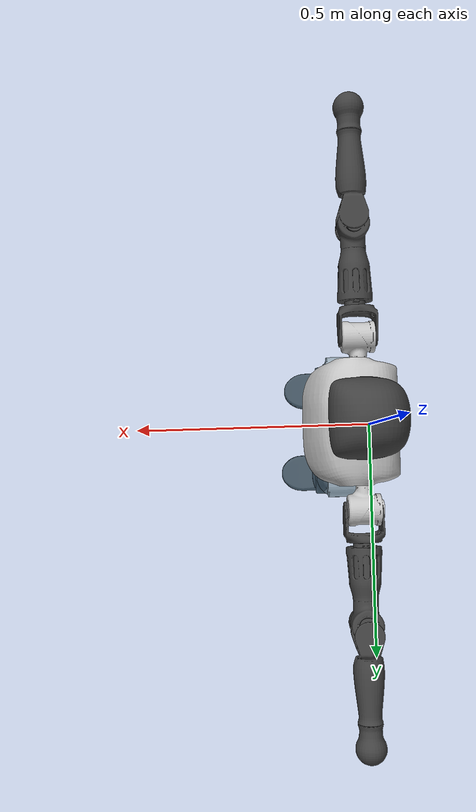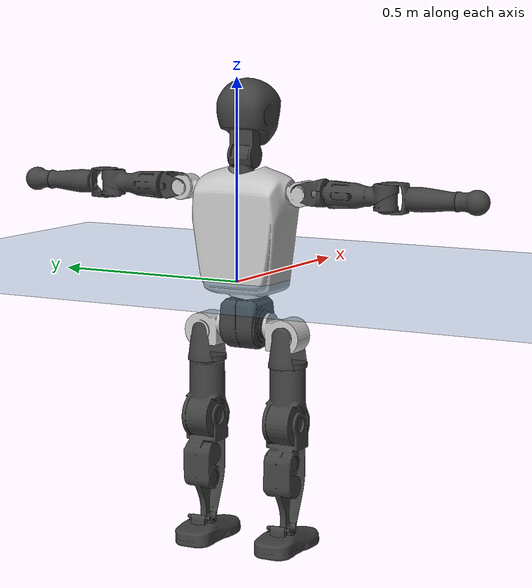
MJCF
<mujoco model="T1">
  <compiler angle="radian" assetdir="assets" balanceinertia="true" inertiafromgeom="false"/>

  <option timestep="0.005" density="1.2" viscosity="2e-05"/>

  <size nkey="1"/>

  <visual>
    <quality shadowsize="8192"/>
    <map shadowclip="0.5"/>
  </visual>

  <default>
    <default class="/">
      <joint armature="0.01" damping="0.01" frictionloss="0.1"/>
      <geom contype="0" conaffinity="0" group="1" solref="-1000 -80"/>
      <site size="0.01 0.005 0.005" group="5"/>
      <general forcelimited="true" biastype="affine" gainprm="25" biasprm="0 -25 -0.6"/>
      <default class="t1">
        <geom rgba="0.25 0.25 0.25 1"/>
        <default class="visual">
          <geom type="mesh" group="2"/>
        </default>
        <default class="collision">
          <geom group="3"/>
        </default>
        <default class="foot">
          <geom size="0.1115 0.05 0.015" type="box" condim="6" group="4" priority="1" solimp="0.015 1 0.015"/>
        </default>
        <default class="reward_collision_sphere">
          <geom group="5" rgba="1 0 0 1"/>
        </default>
      </default>
    </default>
  </default>

  <asset>
    <texture type="skybox" colorspace="auto" name="//unnamed_texture_0" builtin="gradient" rgb1="0.95 0.95 0.95" rgb2="0.95 0.95 0.95" width="100" height="600"/>
    <texture type="2d" colorspace="auto" name="texplane" builtin="checker" rgb1="0.345 0.575 0.748" rgb2="0.345 0.575 0.748" markrgb="1 1 1" width="512" height="512"/>
    <material name="MatPlane" class="/" texture="texplane" texuniform="true" texrepeat="2 2" specular="0.9"/>
    <mesh name="Trunk" class="/" file="Trunk.stl"/>
    <mesh name="H1" class="/" file="H1.stl"/>
    <mesh name="H2" class="/" file="H2.stl"/>
    <mesh name="AL1" class="/" file="AL1.stl"/>
    <mesh name="AL2" class="/" file="AL2.stl"/>
    <mesh name="AL3" class="/" file="AL3.stl"/>
    <mesh name="left_hand_link" class="/" file="left_hand_link.stl"/>
    <mesh name="AR1" class="/" file="AR1.stl"/>
    <mesh name="AR2" class="/" file="AR2.stl"/>
    <mesh name="AR3" class="/" file="AR3.stl"/>
    <mesh name="right_hand_link" class="/" file="right_hand_link.stl"/>
    <mesh name="Waist" class="/" file="Waist.stl"/>
    <mesh name="Hip_Pitch_Left" class="/" file="Hip_Pitch_Left.stl"/>
    <mesh name="Hip_Roll_Left" class="/" file="Hip_Roll_Left.stl"/>
    <mesh name="Hip_Yaw_Left" class="/" file="Hip_Yaw_Left.stl"/>
    <mesh name="Shank_Left" class="/" file="Shank_Left.stl"/>
    <mesh name="Ankle_Cross_Left" class="/" file="Ankle_Cross_Left.stl"/>
    <mesh name="left_foot_link" class="/" file="left_foot_link.stl"/>
    <mesh name="Hip_Pitch_Right" class="/" file="Hip_Pitch_Right.stl"/>
    <mesh name="Hip_Roll_Right" class="/" file="Hip_Roll_Right.stl"/>
    <mesh name="Hip_Yaw_Right" class="/" file="Hip_Yaw_Right.stl"/>
    <mesh name="Shank_Right" class="/" file="Shank_Right.stl"/>
    <mesh name="Ankle_Cross_Right" class="/" file="Ankle_Cross_Right.stl"/>
    <mesh name="right_foot_link" class="/" file="right_foot_link.stl"/>
  </asset>

  <worldbody>
    <geom name="floor" class="/" size="100 100 0.125" type="plane" group="0" material="MatPlane"/>
    <light name="toplight_shadow" class="/" pos="0 0 5" dir="0.0990148 0.0990148 -0.990148" type="directional" ambient="0.04 0.04 0.04" diffuse="0.55 0.55 0.55" specular="0.12 0.12 0.12"/>
    <light name="toplight_fill" class="/" pos="0 0 5" dir="0.0990148 0.0990148 -0.990148" type="directional" castshadow="false" ambient="0.04 0.04 0.04" diffuse="0.3 0.3 0.3" specular="0.08 0.08 0.08"/>
    <body name="trunk" childclass="t1" pos="0.000286271 0.00205435 0.000713098" quat="1 -0.000589828 -0.000317995 0.000285443">
      <inertial pos="0.0413023 -0.000200841 0.105074" quat="0.999973 0.000372376 -0.00730182 0.000925336" mass="10.7612" diaginertia="0.023861 0.13854 0.0540962"/>
      <joint name="//unnamed_joint_0" type="free" armature="0" damping="0" frictionloss="0"/>
      <geom name="//unnamed_geom_1" class="visual" rgba="0.76 0.76 0.76 1" mesh="Trunk"/>
      <geom name="//unnamed_geom_2" class="collision" size="0.0721222 0.0961629 0.144244" pos="0.0461076 0 0.119967" type="box"/>
      <geom name="//unnamed_geom_3" class="reward_collision_sphere" size="0.110587" pos="0.0461076 0 0.0999722"/>
      <geom name="//unnamed_geom_4" class="reward_collision_sphere" size="0.0144244" pos="0.0461076 0.0949199 0"/>
      <geom name="//unnamed_geom_5" class="reward_collision_sphere" size="0.0144244" pos="0.0461076 -0.0949199 0"/>
      <geom name="//unnamed_geom_6" class="reward_collision_sphere" size="0.0144244" pos="0.0461076 0.119487 0.17995"/>
      <geom name="//unnamed_geom_7" class="reward_collision_sphere" size="0.0144244" pos="0.0461076 -0.119487 0.17995"/>
      <site name="imu" pos="0.00281042 -0.00142753 0.00399922" size="0.00961629"/>
      <camera name="track" pos="0 -2.23341 0" quat="0.707107 0.707107 0 0" mode="trackcom"/>
      <camera name="ego_camera" pos="0.0937521 0 0.419883" quat="-0.5 -0.5 0.5 0.5"/>
      <body name="H1" pos="0.0490395 -0.000194482 0.243591" quat="1 -6.00121e-06 -4.71903e-05 2.4312e-05">
        <inertial pos="-0.000204098 0.000745703 0.0597036" quat="0.764308 -0.011604 0.00305175 0.64474" mass="0.413269" diaginertia="6.81342e-05 0.000397286 0.000149343"/>
        <joint name="AAHead_yaw" pos="0 0 0" axis="-0.0004589 8.05151e-05 1" range="-1.53043 1.52264" armature="0.00963545" damping="0" frictionloss="0.109357"/>
        <geom name="//unnamed_geom_8" class="visual" mesh="H1"/>
        <body name="H2" pos="-0.00408918 0.0021603 0.0625263" quat="1 -0.000272558 0.000325854 0.000307655">
          <inertial pos="0.00536594 0.00216573 0.0990967" quat="0.988327 0.106508 -0.0753647 -0.0786499" mass="0.566001" diaginertia="0.000530371 0.00326373 0.00170338"/>
          <joint name="Head_pitch" pos="0 0 0" axis="0.00171696 -0.999998 0.000329884" range="-1.25252 0.336872" armature="0.00969071" damping="0.00224652" frictionloss="0.0908308"/>
          <geom name="//unnamed_geom_9" class="visual" mesh="H2"/>
          <geom name="//unnamed_geom_10" class="collision" size="0.0769303" pos="0.0076846 0 0.109969"/>
          <geom name="//unnamed_geom_11" class="reward_collision_sphere" size="0.0865466" pos="0.0153692 0 0.0999722"/>
        </body>
      </body>
      <body name="AL1" pos="0.0439526 0.121635 0.221647" quat="1 8.51358e-05 0.000110547 0.000204779">
        <inertial pos="0.000548396 0.0472901 -0.00305803" quat="0.498067 0.497651 -0.506465 0.497761" mass="0.456805" diaginertia="0.000366833 0.00212755 0.00028337"/>
        <joint name="Left_Shoulder_Pitch" pos="0 0 0" axis="-0.0038941 0.999992 -0.00110928" range="-3.32575 1.22707" armature="0.0094864" damping="0.0212575" frictionloss="0.0827413"/>
        <geom name="//unnamed_geom_12" class="visual" rgba="0.76 0.76 0.76 1" mesh="AL1"/>
        <body name="AL2" pos="0.0022898 0.0516463 0.00111099" quat="1 2.19044e-05 -0.00029916 6.6979e-05">
          <inertial pos="0.000433254 0.0434924 -0.000247999" quat="0.480524 0.520088 -0.481532 0.516461" mass="0.142671" diaginertia="0.000103095 0.000576916 0.000179424"/>
          <joint name="Left_Shoulder_Roll" pos="0 0 0" axis="-0.999991 -0.00340797 -0.00267918" range="-1.58966 1.69811" armature="0.0102504" damping="0.00518757" frictionloss="0.0993621"/>
          <geom name="//unnamed_geom_13" class="visual" mesh="AL2"/>
          <body name="AL3" pos="0.00121942 0.0653936 -0.000524531" quat="1 -0.000232253 -0.000448081 -0.000143541">
            <inertial pos="-0.00208155 0.0954332 1.87245e-05" quat="0.706672 0.707541 0.000121063 0.000414865" mass="0.907921" diaginertia="0.00354436 0.0221021 0.000596468"/>
            <joint name="Left_Elbow_Pitch" pos="0 0 0" axis="0.000794352 -1 0.000195525" range="-2.24374 2.26216" armature="0.0085186" damping="0.01988" frictionloss="0.10947"/>
            <geom name="//unnamed_geom_14" class="visual" mesh="AL3"/>
            <geom name="//unnamed_geom_15" class="collision" size="0.0288489 0.0721222" pos="0 0.0558353 0" quat="0.707105 0.707108 0 0" type="cylinder"/>
            <geom name="//unnamed_geom_16" class="reward_collision_sphere" size="0.0346186"/>
            <body name="left_hand_link" pos="-0.00176563 0.165105 -0.00140103" quat="0.999999 -0.00115628 -0.000173599 -0.000740106">
              <inertial pos="-0.000234505 0.125076 0.00224231" quat="0.71035 0.703845 0.00189015 0.00109614" mass="0.276246" diaginertia="0.00217855 0.0142143 0.00021144"/>
              <joint name="Left_Elbow_Yaw" pos="0 0 0" axis="-0.00161548 -0.000117187 0.999999" range="-2.39371 -0.0183412" armature="0.0103315" damping="0.00879325" frictionloss="0.106368"/>
              <geom name="//unnamed_geom_17" class="visual" mesh="left_hand_link"/>
              <geom name="//unnamed_geom_18" class="collision" size="0.0288489 0.0841425" pos="0 0.145172 0" quat="0.707105 0.707108 0 0" type="cylinder"/>
              <geom name="//unnamed_geom_19" class="reward_collision_sphere" size="0.0480815"/>
              <geom name="//unnamed_geom_20" class="reward_collision_sphere" size="0.033657" pos="0 0.122838 0"/>
              <geom name="//unnamed_geom_21" class="reward_collision_sphere" size="0.033657" pos="0 0.240092 0"/>
            </body>
          </body>
        </body>
      </body>
      <body name="AR1" pos="0.045624 -0.116697 0.219832" quat="1 -9.20187e-05 0.000419168 -8.02032e-05">
        <inertial pos="-0.00264163 -0.0532006 0.00209375" quat="0.49261 0.500229 -0.507461 0.49959" mass="0.4599" diaginertia="0.000349889 0.00215386 0.000285484"/>
        <joint name="Right_Shoulder_Pitch" pos="0 0 0" axis="0.0181362 -0.999819 0.00582426" range="-1.22754 3.3504" armature="0.00886551" damping="0" frictionloss="0.0981933"/>
        <geom name="//unnamed_geom_22" class="visual" rgba="0.76 0.76 0.76 1" mesh="AR1"/>
        <body name="AR2" pos="0.000220129 -0.0486818 0.00432255" quat="0.999999 -0.00103528 -0.000383522 0.000147207">
          <inertial pos="-3.17967e-05 -0.0422894 0.00210411" quat="0.515534 0.488017 -0.509629 0.486151" mass="0.141392" diaginertia="0.000105253 0.000589519 0.000175381"/>
          <joint name="Right_Shoulder_Roll" pos="0 0 0" axis="-0.999975 -0.00562867 0.00434623" range="-1.6881 1.5626" armature="0.00939948" damping="0.0200008" frictionloss="0.0975943"/>
          <geom name="//unnamed_geom_23" class="visual" mesh="AR2"/>
          <body name="AR3" pos="0.00274703 -0.0666081 -0.00307478" quat="0.999999 0.00025679 -0.000500737 0.00110116">
            <inertial pos="0.00104615 -0.096279 0.00232554" quat="0.712191 0.701964 0.00323912 -0.00442554" mass="0.908054" diaginertia="0.00339443 0.0222074 0.000622822"/>
            <joint name="Right_Elbow_Pitch" pos="0 0 0" axis="0.00179501 0.999915 -0.0129472" stiffness="0.00411012" range="-2.28253 2.21301" armature="0.00898909" damping="0.0123211" frictionloss="0.0946471"/>
            <geom name="//unnamed_geom_24" class="visual" mesh="AR3"/>
            <geom name="//unnamed_geom_25" class="collision" size="0.0288489 0.0721222" pos="0 -0.0558353 0" quat="0.707105 0.707108 0 0" type="cylinder"/>
            <geom name="//unnamed_geom_26" class="reward_collision_sphere" size="0.0346186"/>
            <body name="right_hand_link" pos="-0.000173623 -0.163112 -0.0011757" quat="1 8.45025e-05 6.39285e-05 -4.04658e-05">
              <inertial pos="-0.00156817 -0.120952 -0.00172665" quat="0.711667 0.702439 0.0103884 -0.00086705" mass="0.282069" diaginertia="0.0021849 0.0131708 0.000214434"/>
              <joint name="Right_Elbow_Yaw" pos="0 0 0" axis="0.000417591 -0.00770323 0.99997" range="-0.00503724 2.43612" armature="0.00838808" damping="0" frictionloss="0.0946531"/>
              <geom name="//unnamed_geom_27" class="visual" mesh="right_hand_link"/>
              <geom name="//unnamed_geom_28" class="collision" size="0.0288489 0.0841425" pos="0 -0.145172 0" quat="0.707105 0.707108 0 0" type="cylinder"/>
              <geom name="//unnamed_geom_29" class="reward_collision_sphere" size="0.0480815"/>
              <geom name="//unnamed_geom_30" class="reward_collision_sphere" size="0.033657" pos="0 -0.122838 0"/>
              <geom name="//unnamed_geom_31" class="reward_collision_sphere" size="0.033657" pos="0 -0.240092 0"/>
            </body>
          </body>
        </body>
      </body>
      <body name="Waist" pos="0.0470385 -0.00341562 -0.114156" quat="1 0.000116323 -4.0246e-05 -0.000294881">
        <inertial pos="0.00500685 -0.00164607 0.0103256" quat="0.983397 -0.00243633 -0.181446 -0.000990307" mass="2.35779" diaginertia="0.00143069 0.00938252 0.00470533"/>
        <joint name="Waist" pos="0 0 0" axis="-0.0119869 0.000177577 0.999928" range="-1.59902 1.62335" armature="0.00914773" damping="0.00804799" frictionloss="0.096112"/>
        <geom name="//unnamed_geom_32" class="visual" mesh="Waist"/>
        <body name="Hip_Pitch_Left" pos="0.00162421 0.116721 -3.70747e-05" quat="1 -0.0001904 0.000163425 0.000101758">
          <inertial pos="-0.0010953 -0.00912295 -0.0167905" quat="0.975919 0.217729 0.0084184 0.0102937" mass="0.909965" diaginertia="0.000499793 0.00253184 0.00128207"/>
          <joint name="Left_Hip_Pitch" pos="0 0 0" axis="-0.00495947 0.999956 -0.00795254" range="-1.78444 1.55429" armature="0.00958798" damping="0.00104168" frictionloss="0.0933024"/>
          <geom name="//unnamed_geom_33" class="visual" rgba="0.76 0.76 0.76 1" mesh="Hip_Pitch_Left"/>
          <body name="Hip_Roll_Left" pos="0.00330488 -0.00029341 -0.0209755" quat="1 -7.52837e-05 -0.000371463 -9.77354e-05">
            <inertial pos="0.00192626 -0.00176031 -0.05454" quat="0.703582 0.00185041 0.00405855 0.7106" mass="0.349013" diaginertia="0.000466057 0.00276621 0.000517804"/>
            <joint name="Left_Hip_Roll" pos="0 0 0" axis="-0.999941 -0.0108154 -0.0010433" stiffness="0.00208403" range="-1.53546 0.200484" armature="0.00939373" damping="0.0177345" frictionloss="0.0881754"/>
            <geom name="//unnamed_geom_34" class="visual" mesh="Hip_Roll_Left"/>
            <geom name="//unnamed_geom_35" class="reward_collision_sphere" size="0.0528896"/>
            <body name="Hip_Yaw_Left" pos="-0.000364901 0.00113544 -0.0839712" quat="1 -5.35911e-06 1.97719e-06 -8.97587e-06">
              <inertial pos="-0.00306807 -0.00127298 -0.08893" quat="0.692324 -0.0422576 -0.0228587 0.719986" mass="1.85993" diaginertia="0.00664233 0.044828 0.00253854"/>
              <joint name="Left_Hip_Yaw" pos="0 0 0" axis="0.00464883 0.0022409 -0.999987" stiffness="0.00632152" range="-0.983452 1.03374" armature="0.00880482" damping="0" frictionloss="0.095347"/>
              <geom name="//unnamed_geom_36" class="visual" mesh="Hip_Yaw_Left"/>
              <geom name="//unnamed_geom_37" class="collision" size="0.0480815 0.0769303" type="cylinder"/>
              <body name="Shank_Left" pos="-0.0118667 -0.000262225 -0.134177" quat="1 -0.000348057 -0.000307442 -0.000362887">
                <inertial pos="-0.00173323 0.00226633 -0.127427" quat="0.997599 0.00131178 -0.0237971 0.0650211" mass="1.60805" diaginertia="0.00971322 0.0621534 0.00190076"/>
                <joint name="Left_Knee_Pitch" pos="0 0 0" axis="-0.0174581 0.999839 0.00407969" range="-0.0487181 2.33753" armature="0.0104511" damping="0" frictionloss="0.0972107"/>
                <geom name="//unnamed_geom_38" class="visual" mesh="Shank_Left"/>
                <geom name="//unnamed_geom_39" class="collision" size="0.0480815 0.0721222" pos="0 0 -0.119967" type="cylinder"/>
                <geom name="//unnamed_geom_40" class="reward_collision_sphere" size="0.0625059"/>
                <body name="Ankle_Cross_Left" pos="0.000900454 -0.00295647 -0.279718" quat="1 -0.000132499 0.000197181 -0.000273265">
                  <inertial pos="-0.00242748 0.000228417 -0.00860029" quat="0.442882 0.547113 0.554321 0.444129" mass="0.0692361" diaginertia="7.7794e-06 4.57409e-05 1.16647e-05"/>
                  <joint name="Left_Ankle_Pitch" pos="0 0 0" axis="0.00515804 0.999967 0.00625921" range="-0.872803 0.343581" armature="0.00924965" damping="0.0042063" frictionloss="0.100648"/>
                  <geom name="//unnamed_geom_41" class="visual" mesh="Ankle_Cross_Left"/>
                  <body name="left_foot_link" pos="0.000797708 -0.001119 -0.0112779" quat="1 0.000490938 -0.000453546 0.000653636">
                    <inertial pos="-0.00069887 -0.000301168 -0.0108002" quat="-0.000429043 0.619677 0.000282593 0.784856" mass="0.573198" diaginertia="0.000685066 0.00401681 0.00204375"/>
                    <joint name="Left_Ankle_Roll" pos="0 0 0" axis="-0.999895 -0.013715 0.00468713" stiffness="0.00854652" range="-0.478853 0.494802" armature="0.00952191" damping="0.00232184" frictionloss="0.0949061"/>
                    <geom name="//unnamed_geom_42" class="visual" mesh="left_foot_link"/>
                    <geom name="left_foot" class="foot" size="0.105601 0.0466871 0.0158212" pos="0.0076846 0 -0.0149958"/>
                    <geom name="//unnamed_geom_44" class="reward_collision_sphere" size="0.0500047" pos="0.0076846 0 -0.0149958"/>
                    <geom name="//unnamed_geom_45" class="reward_collision_sphere" size="0.0288489" pos="0.0730037 -0.0256842 -0.0149958"/>
                    <geom name="//unnamed_geom_46" class="reward_collision_sphere" size="0.0288489" pos="-0.0537922 -0.0256842 -0.0149958"/>
                    <site name="left_foot" class="foot" pos="0.0076846 0 -0.0149958" size="0.00961629"/>
                  </body>
                </body>
              </body>
            </body>
          </body>
        </body>
        <body name="Hip_Pitch_Right" pos="-0.00189655 -0.116831 0.000175614" quat="1 -9.03593e-05 0.000205977 -0.000216223">
          <inertial pos="0.00107081 0.0097271 -0.0154903" quat="0.975033 -0.220801 0.0234107 0.0032197" mass="0.934236" diaginertia="0.000501964 0.00260173 0.00132568"/>
          <joint name="Right_Hip_Pitch" pos="0 0 0" axis="-0.00305195 -0.999995 0.000317613" range="-1.52716 1.7912" armature="0.00978455" damping="0.0204625" frictionloss="0.0912479"/>
          <geom name="//unnamed_geom_47" class="visual" rgba="0.76 0.76 0.76 1" mesh="Hip_Pitch_Right"/>
          <body name="Hip_Roll_Right" pos="-0.000205908 0.000276172 -0.0187092" quat="1 -4.99554e-05 4.82161e-05 -8.74934e-06">
            <inertial pos="-0.00140326 0.000337882 -0.0507997" quat="0.707005 -0.00492191 -0.00532711 0.707172" mass="0.34297" diaginertia="0.000480402 0.0027313 0.000532258"/>
            <joint name="Right_Hip_Roll" pos="0 0 0" axis="-0.999847 -0.00161626 -0.0174441" range="-0.160507 1.51161" armature="0.0101183" damping="0" frictionloss="0.100075"/>
            <geom name="//unnamed_geom_48" class="visual" mesh="Hip_Roll_Right"/>
            <geom name="//unnamed_geom_49" class="reward_collision_sphere" size="0.0528896"/>
            <body name="Hip_Yaw_Right" pos="0.000714088 0.00116727 -0.0814996" quat="1 -0.000485032 0.00034675 8.61109e-05">
              <inertial pos="-0.00581416 -0.00180702 -0.0876341" quat="0.711908 -0.0295825 -0.0346109 0.700795" mass="1.90148" diaginertia="0.00704453 0.0463461 0.00255098"/>
              <joint name="Right_Hip_Yaw" pos="0 0 0" axis="-0.0127025 0.0128219 -0.999837" range="-0.981674 1.00028" armature="0.00967361" damping="0.0105371" frictionloss="0.0972833"/>
              <geom name="//unnamed_geom_50" class="visual" mesh="Hip_Yaw_Right"/>
              <geom name="//unnamed_geom_51" class="collision" size="0.0480815 0.0769303" type="cylinder"/>
              <body name="Shank_Right" pos="-0.0121978 -9.97067e-05 -0.135318" quat="1 0.000138796 -0.000154008 7.87803e-05">
                <inertial pos="-0.00248954 0.00274036 -0.12471" quat="0.999311 0.00359147 -0.0196258 -0.0312813" mass="1.64884" diaginertia="0.00931821 0.0625721 0.00197358"/>
                <joint name="Right_Knee_Pitch" pos="0 0 0" axis="-0.00703464 -0.999969 0.0036637" stiffness="0.00997044" range="-2.35605 -0.00328752" armature="0.00905015" damping="0.00708935" frictionloss="0.0876227"/>
                <geom name="//unnamed_geom_52" class="visual" mesh="Shank_Right"/>
                <geom name="//unnamed_geom_53" class="collision" size="0.0480815 0.0721222" pos="0 0 -0.119967" type="cylinder"/>
                <geom name="//unnamed_geom_54" class="reward_collision_sphere" size="0.0625059"/>
                <body name="Ankle_Cross_Right" pos="-0.00213795 -0.00303095 -0.280402" quat="0.999999 -0.000510756 -0.00110504 0.000586279">
                  <inertial pos="-0.00190916 -0.0022629 -0.00780431" quat="0.444257 0.560257 0.543629 0.439564" mass="0.0610485" diaginertia="7.47523e-06 4.27296e-05 1.10398e-05"/>
                  <joint name="Right_Ankle_Pitch" pos="0 0 0" axis="-0.00568686 -0.999982 0.00173744" range="-0.393592 0.911091" armature="0.00898996" damping="0.0176419" frictionloss="0.0954763"/>
                  <geom name="//unnamed_geom_55" class="visual" mesh="Ankle_Cross_Right"/>
                  <body name="right_foot_link" pos="-0.00218707 -0.00279547 -0.0105986" quat="1 0.000438015 7.09075e-05 -0.000166225">
                    <inertial pos="-0.000143336 -0.00271965 -0.0104681" quat="-0.000263585 0.625359 -0.00121457 0.780336" mass="0.595326" diaginertia="0.000727391 0.0040162 0.00210759"/>
                    <joint name="Right_Ankle_Roll" pos="0 0 0" axis="-1 0.00038614 5.99552e-05" range="-0.488463 0.42103" armature="0.0100224" damping="0" frictionloss="0.0860448"/>
                    <geom name="//unnamed_geom_56" class="visual" mesh="right_foot_link"/>
                    <geom name="right_foot" class="foot" size="0.100497 0.0498166 0.0134645" pos="0.0076846 0 -0.0149958"/>
                    <geom name="//unnamed_geom_58" class="reward_collision_sphere" size="0.0384652"/>
                    <geom name="//unnamed_geom_59" class="reward_collision_sphere" size="0.0288489" pos="0.0076846 0 -0.0149958"/>
                    <geom name="//unnamed_geom_60" class="reward_collision_sphere" size="0.0288489" pos="0.0730037 0.0256842 -0.0149958"/>
                    <geom name="//unnamed_geom_61" class="reward_collision_sphere" size="0.0288489" pos="-0.0537922 0.0256842 -0.0149958"/>
                    <site name="right_foot" class="foot" pos="0.0076846 0 -0.0149958" size="0.00961629"/>
                  </body>
                </body>
              </body>
            </body>
          </body>
        </body>
      </body>
    </body>
  </worldbody>

  <contact>
    <pair class="/" geom1="floor" geom2="left_foot" name="//unnamed_contact_0"/>
    <pair class="/" geom1="floor" geom2="right_foot" name="//unnamed_contact_1"/>
  </contact>

  <actuator>
    <general name="AAHead_yaw" class="/" joint="AAHead_yaw" forcerange="-6.59951 6.59951" gainprm="24.7123" biasprm="0 -24.7123 -0.551977"/>
    <general name="Head_pitch" class="/" joint="Head_pitch" forcerange="-7.41982 7.41982" gainprm="24.7123" biasprm="0 -24.7123 -0.551977"/>
    <general name="Left_Shoulder_Pitch" class="/" joint="Left_Shoulder_Pitch" forcerange="-15.4287 15.4287" gainprm="24.7123" biasprm="0 -24.7123 -0.551977"/>
    <general name="Left_Shoulder_Roll" class="/" joint="Left_Shoulder_Roll" forcerange="-18.67 18.67" gainprm="24.7123" biasprm="0 -24.7123 -0.551977"/>
    <general name="Left_Elbow_Pitch" class="/" joint="Left_Elbow_Pitch" forcerange="-17.1003 17.1003" gainprm="24.7123" biasprm="0 -24.7123 -0.551977"/>
    <general name="Left_Elbow_Yaw" class="/" joint="Left_Elbow_Yaw" forcerange="-17.3169 17.3169" gainprm="24.7123" biasprm="0 -24.7123 -0.551977"/>
    <general name="Right_Shoulder_Pitch" class="/" joint="Right_Shoulder_Pitch" forcerange="-18.8459 18.8459" gainprm="24.7123" biasprm="0 -24.7123 -0.551977"/>
    <general name="Right_Shoulder_Roll" class="/" joint="Right_Shoulder_Roll" forcerange="-18.811 18.811" gainprm="24.7123" biasprm="0 -24.7123 -0.551977"/>
    <general name="Right_Elbow_Pitch" class="/" joint="Right_Elbow_Pitch" forcerange="-17.6093 17.6093" gainprm="24.7123" biasprm="0 -24.7123 -0.551977"/>
    <general name="Right_Elbow_Yaw" class="/" joint="Right_Elbow_Yaw" forcerange="-16.7719 16.7719" gainprm="24.7123" biasprm="0 -24.7123 -0.551977"/>
    <general name="Waist" class="/" joint="Waist" forcerange="-29.7127 29.7127" gainprm="24.7123" biasprm="0 -24.7123 -0.551977"/>
    <general name="Left_Hip_Pitch" class="/" joint="Left_Hip_Pitch" forcerange="-42.5172 42.5172" gainprm="24.7123" biasprm="0 -24.7123 -0.551977"/>
    <general name="Left_Hip_Roll" class="/" joint="Left_Hip_Roll" forcerange="-27.7278 27.7278" gainprm="24.7123" biasprm="0 -24.7123 -0.551977"/>
    <general name="Left_Hip_Yaw" class="/" joint="Left_Hip_Yaw" forcerange="-26.528 26.528" gainprm="24.7123" biasprm="0 -24.7123 -0.551977"/>
    <general name="Left_Knee_Pitch" class="/" joint="Left_Knee_Pitch" forcerange="-56.1589 56.1589" gainprm="24.7123" biasprm="0 -24.7123 -0.551977"/>
    <general name="Left_Ankle_Pitch" class="/" joint="Left_Ankle_Pitch" forcerange="-17.5864 17.5864" gainprm="24.7123" biasprm="0 -24.7123 -0.551977"/>
    <general name="Left_Ankle_Roll" class="/" joint="Left_Ankle_Roll" forcerange="-13.0801 13.0801" gainprm="24.7123" biasprm="0 -24.7123 -0.551977"/>
    <general name="Right_Hip_Pitch" class="/" joint="Right_Hip_Pitch" forcerange="-43.0452 43.0452" gainprm="24.7123" biasprm="0 -24.7123 -0.551977"/>
    <general name="Right_Hip_Roll" class="/" joint="Right_Hip_Roll" forcerange="-28.1047 28.1047" gainprm="24.7123" biasprm="0 -24.7123 -0.551977"/>
    <general name="Right_Hip_Yaw" class="/" joint="Right_Hip_Yaw" forcerange="-31.1918 31.1918" gainprm="24.7123" biasprm="0 -24.7123 -0.551977"/>
    <general name="Right_Knee_Pitch" class="/" joint="Right_Knee_Pitch" forcerange="-57.0752 57.0752" gainprm="24.7123" biasprm="0 -24.7123 -0.551977"/>
    <general name="Right_Ankle_Pitch" class="/" joint="Right_Ankle_Pitch" forcerange="-19.3711 19.3711" gainprm="24.7123" biasprm="0 -24.7123 -0.551977"/>
    <general name="Right_Ankle_Roll" class="/" joint="Right_Ankle_Roll" forcerange="-14.612 14.612" gainprm="24.7123" biasprm="0 -24.7123 -0.551977"/>
  </actuator>

  <sensor>
    <gyro site="imu" name="imu_angular_velocity"/>
    <velocimeter site="imu" name="imu_linear_velocity"/>
    <framelinvel objtype="site" objname="left_foot" name="left_foot_global_linear_velocity"/>
    <framelinvel objtype="site" objname="right_foot" name="right_foot_global_linear_velocity"/>
  </sensor>

  <keyframe>
    <key name="home" qpos="0 0 0.6385 1 0 0 0 0 0 0 1.4 0 -0.4 0 -1.4 0 0.4 0 -0.4 0 0 0.8 -0.4 0 0.4 0 0 -0.8 0.4 0"/>
  </keyframe>
</mujoco>
